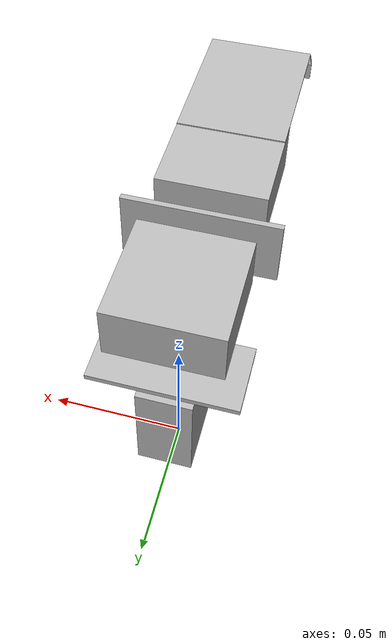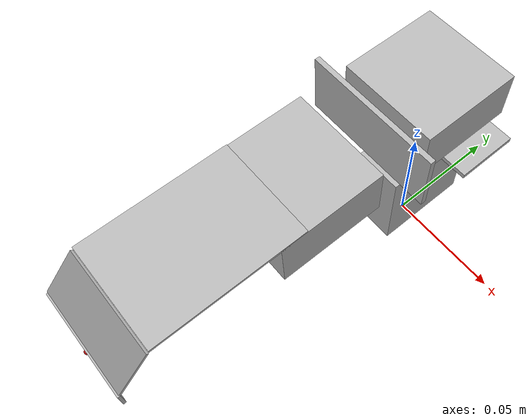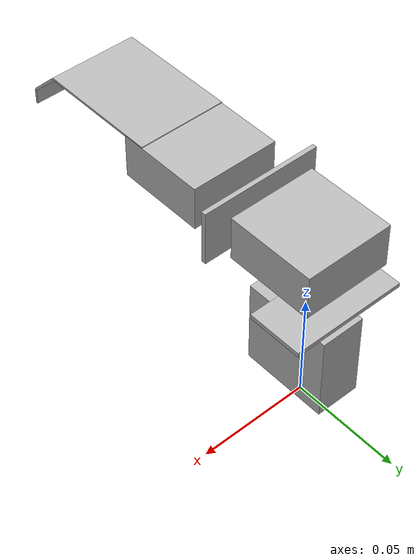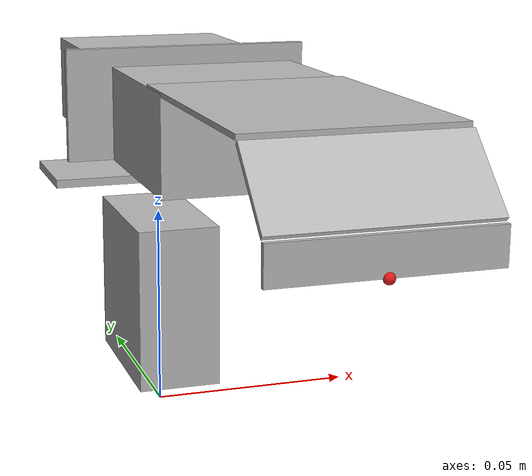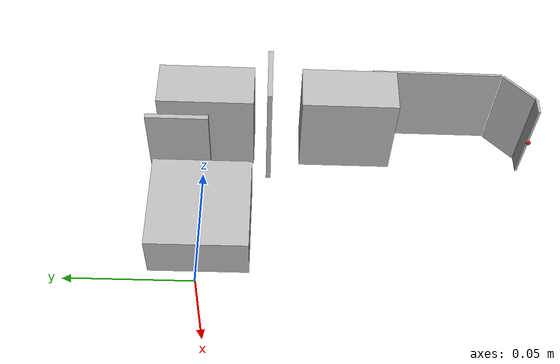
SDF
<sdf version='1.6'>
  <model name='lobot'>
    <link name='arm_1_link'>
      <pose frame=''>0 0 0.03 0 -0 0</pose>
      <inertial>
        <pose frame=''>0 0 0 0 -0 0</pose>
        <mass>0.06</mass>
        <inertia>
          <ixx>0</ixx>
          <ixy>0</ixy>
          <ixz>0</ixz>
          <iyy>0</iyy>
          <iyz>0</iyz>
          <izz>0</izz>
        </inertia>
      </inertial>
      <collision name='arm_1_link_collision'>
        <pose frame=''>0 0 0 0 -0 0</pose>
        <geometry>
          <box>
            <size>0.02 0.04 0.04</size>
          </box>
        </geometry>
        <surface>
          <contact>
            <ode/>
          </contact>
          <friction>
            <ode/>
          </friction>
        </surface>
      </collision>
      <visual name='arm_1_link_visual'>
        <pose frame=''>0 0 0 0 -0 0</pose>
        <geometry>
          <box>
            <size>0.02 0.04 0.04</size>
          </box>
        </geometry>
        <material>
          <script>
            <uri>__default__</uri>
            <name>__default__</name>
          </script>
        </material>
      </visual>
      <gravity>1</gravity>
      <velocity_decay/>
      <self_collide>1</self_collide>
    </link>
    <joint name='world_joint' type='fixed'>
      <child>arm_1_link</child>
      <parent>world</parent>
    </joint>
    <link name='arm_bracket_1'>
      <pose frame=''>0 0.01 0.03 0 -0 0</pose>
      <inertial>
        <pose frame=''>0 0 0.03693 0 -0 0</pose>
        <mass>0.00658</mass>
        <inertia>
          <ixx>0.00097149</ixx>
          <ixy>0</ixy>
          <ixz>0</ixz>
          <iyy>0.00390446</iyy>
          <iyz>0</iyz>
          <izz>0.00346115</izz>
        </inertia>
      </inertial>
      <collision name='arm_bracket_1_collision'>
        <pose frame=''>0 0 0.029 0 -0 0</pose>
        <geometry>
          <box>
            <size>0.052 0.025 0.002</size>
          </box>
        </geometry>
      </collision>
      <visual name='arm_bracket_1_visual'>
        <pose frame=''>0 0 0.029 0 -0 0</pose>
        <geometry>
          <box>
            <size>0.052 0.025 0.002</size>
          </box>
        </geometry>
      </visual>
    </link>
    <joint name='arm_1_joint' type='revolute'>
      <child>arm_bracket_1</child>
      <parent>arm_1_link</parent>
      <axis>
        <xyz>0 0 1</xyz>
        <limit>
          <lower>-2.356</lower>
          <upper>2.356</upper>
          <effort>3.5</effort>
          <velocity>10</velocity>
        </limit>
        <dynamics>
          <spring_reference>0</spring_reference>
          <spring_stiffness>0</spring_stiffness>
        </dynamics>
        <use_parent_model_frame>1</use_parent_model_frame>
      </axis>
    </joint>
    <link name='arm_2_link'>
      <pose frame=''>0 0.01 0.082 0 -0 0</pose>
      <inertial>
        <pose frame=''>0.00042 -0.018945 0 0 -0 0</pose>
        <mass>0.07355</mass>
        <inertia>
          <ixx>0.00933845</ixx>
          <ixy>-0.00250186</ixy>
          <ixz>0</ixz>
          <iyy>0.0131322</iyy>
          <iyz>0</iyz>
          <izz>0.0187926</izz>
        </inertia>
      </inertial>
      <collision name='arm_2_link_collision'>
        <pose frame=''>0 -0.01 0 0 -0 0</pose>
        <geometry>
          <box>
            <size>0.04 0.04 0.02</size>
          </box>
        </geometry>
      </collision>
      <collision name='arm_2_link_fixed_joint_lump__arm_bracket_2_collision_1'>
        <pose frame=''>0 -0.03653 0 0 -0 0</pose>
        <geometry>
          <box>
            <size>0.055 0.002 0.025</size>
          </box>
        </geometry>
      </collision>
      <visual name='arm_2_link_visual'>
        <pose frame=''>0 -0.01 0 0 -0 0</pose>
        <geometry>
          <box>
            <size>0.04 0.04 0.02</size>
          </box>
        </geometry>
      </visual>
      <visual name='arm_2_link_fixed_joint_lump__arm_bracket_2_visual_1'>
        <pose frame=''>0 -0.03653 0 0 -0 0</pose>
        <geometry>
          <box>
            <size>0.055 0.002 0.025</size>
          </box>
        </geometry>
      </visual>
    </link>
    <joint name='arm_2_joint' type='revolute'>
      <child>arm_2_link</child>
      <parent>arm_bracket_1</parent>
      <axis>
        <xyz>1 0 0</xyz>
        <limit>
          <lower>-1.5708</lower>
          <upper>0.5</upper>
          <effort>3</effort>
          <velocity>20</velocity>
        </limit>
        <dynamics>
          <spring_reference>0</spring_reference>
          <spring_stiffness>0</spring_stiffness>
        </dynamics>
        <use_parent_model_frame>1</use_parent_model_frame>
      </axis>
    </joint>
    <link name='arm_3_link'>
      <pose frame=''>0 -0.05 0.082 0 -0 0</pose>
      <inertial>
        <pose frame=''>0.000377 -0.034272 0.00104 0 -0 0</pose>
        <mass>0.0820301</mass>
        <inertia>
          <ixx>0.011564</ixx>
          <ixy>-0.00250233</ixy>
          <ixz>3.21314e-08</ixz>
          <iyy>0.0108078</iyy>
          <iyz>1.26507e-05</iyz>
          <izz>0.018913</izz>
        </inertia>
      </inertial>
      <collision name='arm_3_link_collision'>
        <pose frame=''>0 -0.01 0 0 -0 0</pose>
        <geometry>
          <box>
            <size>0.04 0.04 0.02</size>
          </box>
        </geometry>
      </collision>
      <collision name='arm_3_link_fixed_joint_lump__grip_link_1_collision_1'>
        <pose frame=''>0 -0.0475 0.01 0 -0 0</pose>
        <geometry>
          <box>
            <size>0.04 0.055 0.001</size>
          </box>
        </geometry>
      </collision>
      <collision name='arm_3_link_fixed_joint_lump__grip_link_2_collision_2'>
        <pose frame=''>0 -0.0815 0.0033 0.785398 -0 0</pose>
        <geometry>
          <box>
            <size>0.04 0.017 0.001</size>
          </box>
        </geometry>
      </collision>
      <collision name='arm_3_link_fixed_joint_lump__grip_link_3_collision_3'>
        <pose frame=''>0 -0.088 -0.0067 0 -0 0</pose>
        <geometry>
          <box>
            <size>0.04 0.001 0.007</size>
          </box>
        </geometry>
      </collision>
      <visual name='arm_3_link_visual'>
        <pose frame=''>0 -0.01 0 0 -0 0</pose>
        <geometry>
          <box>
            <size>0.04 0.04 0.02</size>
          </box>
        </geometry>
      </visual>
      <visual name='arm_3_link_fixed_joint_lump__grip_link_1_visual_1'>
        <pose frame=''>0 -0.0475 0.01 0 -0 0</pose>
        <geometry>
          <box>
            <size>0.04 0.055 0.001</size>
          </box>
        </geometry>
      </visual>
      <visual name='arm_3_link_fixed_joint_lump__grip_link_2_visual_2'>
        <pose frame=''>0 -0.0815 0.0033 0.785398 -0 0</pose>
        <geometry>
          <box>
            <size>0.04 0.017 0.001</size>
          </box>
        </geometry>
      </visual>
      <visual name='arm_3_link_fixed_joint_lump__grip_link_3_visual_3'>
        <pose frame=''>0 -0.088 -0.0067 0 -0 0</pose>
        <geometry>
          <box>
            <size>0.04 0.001 0.007</size>
          </box>
        </geometry>
      </visual>
      <visual name='arm_3_link_fixed_joint_lump__grip_end_point_visual_4'>
        <pose frame=''>0 -0.0885 -0.0102 0 -0 0</pose>
        <geometry>
          <sphere>
            <radius>0.001</radius>
          </sphere>
        </geometry>
        <material>
          <ambient>0.6 0.19225 0.19225 1</ambient>
          <diffuse>0.9 0.1 0.1 1</diffuse>
          <specular>0.9 0.1 0.1 1</specular>
          <emissive>0 0 0 0</emissive>
          <script>
            <uri>__default__</uri>
            <name>__default__</name>
          </script>
        </material>
      </visual>
      <gravity>1</gravity>
      <velocity_decay/>
    </link>
    <joint name='arm_3_joint' type='revolute'>
      <child>arm_3_link</child>
      <parent>arm_2_link</parent>
      <axis>
        <xyz>1 0 0</xyz>
        <limit>
          <lower>-1.5708</lower>
          <upper>1.5708</upper>
          <effort>3</effort>
          <velocity>10</velocity>
        </limit>
        <dynamics>
          <spring_reference>0</spring_reference>
          <spring_stiffness>0</spring_stiffness>
        </dynamics>
        <use_parent_model_frame>1</use_parent_model_frame>
      </axis>
    </joint>
    <plugin name='arm_standalone_joint_state_publisher' filename='libmy_joint_state_publisher.so'>
      <robot_name>arm_standalone</robot_name>
      <update_rate>500</update_rate>
    </plugin>
    <plugin name='robot_control_plugin_arm_standalone' filename='librobot_control_plugin.so'>
      <robot_name>arm_standalone</robot_name>
      <update_rate>100</update_rate>
    </plugin>
    <static>0</static>
    <plugin name='robot_contact_plugin_arm_standalone' filename='librobot_contact_plugin.so'>
      <robot_name>arm_standalone</robot_name>
    </plugin>
  </model>
</sdf>
